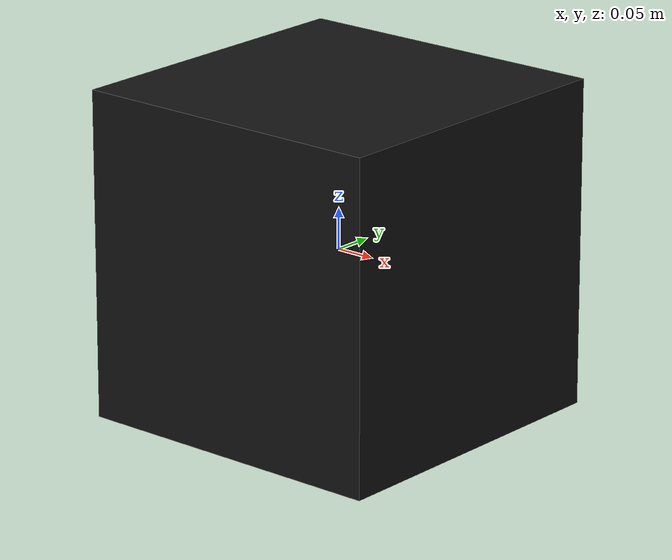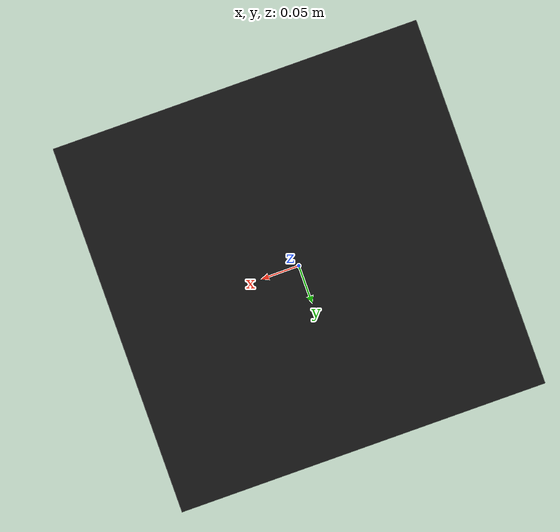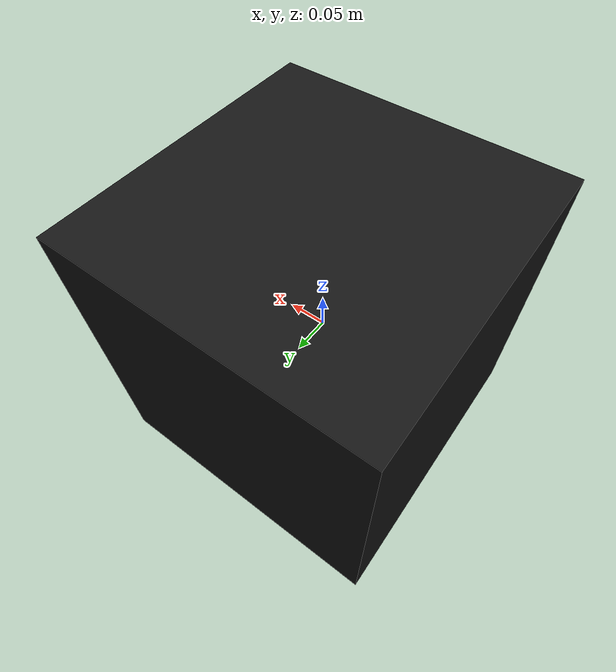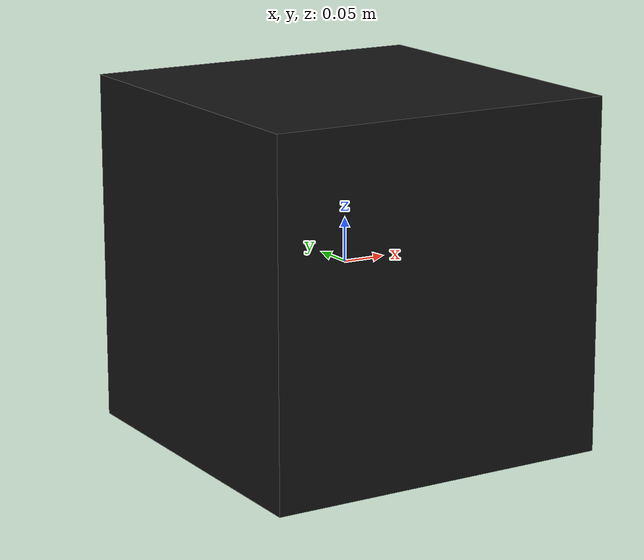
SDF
<?xml version="1.0"?>
<sdf version="1.5">
        <world name="world">

                <!-- Basic elements -->
                <include>
                        <uri>model://sun</uri>
                </include>
                <scene>
                        <shadows>false</shadows>
                        <background>1.0 1.0 1.0 1</background>
                        <grid>true</grid>
                        <origin_visual>true</origin_visual>
                </scene>

                <!--===========================================================================
                | Models
                ============================================================================-->

                <model name="gripper">
                        <frame name="origin">
                                <pose>0 0 0 0 0 0</pose>
                        </frame>
                        <link name="gripper">
                                <gravity>0</gravity>
                                <inertial>
                                        <!-- fictitious values -->
                                        <mass>10</mass>
                                        <inertia>
                                                <ixx>0.1</ixx>
                                                <ixy>0</ixy>
                                                <ixz>0</ixz>
                                                <iyy>0.1</iyy>
                                                <iyz>0</iyz>
                                                <izz>0.1</izz>
                                        </inertia>
                                </inertial>
                                <visual name="body">
                                        <material>
                                                <ambient>0.08 0.08 0.08 1</ambient>
                                        </material>
                                        <pose>0 0 0 0 0 0</pose>
                                        <geometry>
                                                <box>
                                                        <size>0.4 0.4 0.4</size>
                                                </box>
                                        </geometry>
                                </visual>
                                <collision name="collision">
                                        <surface>
                                                <contact>
                                                        <!-- Don't collide with default objects 0xffff -->
                                                        <collide_bitmask>0xffff0000</collide_bitmask>
                                                </contact>
                                        </surface>
                                        <geometry>
                                                <box>
                                                        <size>0.4 0.4 0.4</size>
                                                </box>
                                        </geometry>
                                </collision>

                                <sensor type="camera" name="camera1">
                                        <update_rate>30.0</update_rate>
                                        <camera name="head">
                                                <horizontal_fov>1.3962634</horizontal_fov>
                                                <image>
                                                        <width>1200</width>
                                                        <height>800</height>
                                                        <format>R8G8B8</format>
                                                </image>
                                                <clip>
                                                        <near>0.001</near>
                                                        <far>300</far>
                                                </clip>
                                                <noise>
                                                        <type>gaussian</type>
                                                        <mean>0.0</mean>
                                                        <stddev>0.007</stddev>
                                                </noise>
                                        </camera>
                                        <plugin name="camera_controller" filename="libgazebo_ros_camera.so">
                                                <alwaysOn>true</alwaysOn>
                                                <updateRate>0.0</updateRate>
                                                <cameraName>gripper_camera</cameraName>
                                                <imageTopicName>image_raw</imageTopicName>
                                                <cameraInfoTopicName>camera_info</cameraInfoTopicName>
                                                <frameName>camera_link</frameName>
                                                <hackBaseline>0.07</hackBaseline>
                                                <distortionK1>0.0</distortionK1>
                                                <distortionK2>0.0</distortionK2>
                                                <distortionK3>0.0</distortionK3>
                                                <distortionT1>0.0</distortionT1>
                                                <distortionT2>0.0</distortionT2>
                                        </plugin>
                                </sensor>
                                <plugin name="motion_conrol" filename="libgazebo_ros_hand_of_god.so">
                                        <linkName>gripper</linkName>
                                        <kl>1.0</kl>
                                        <ka>1.0</ka>
                                </plugin>
                        </link>
                </model>

        </world>
</sdf>
